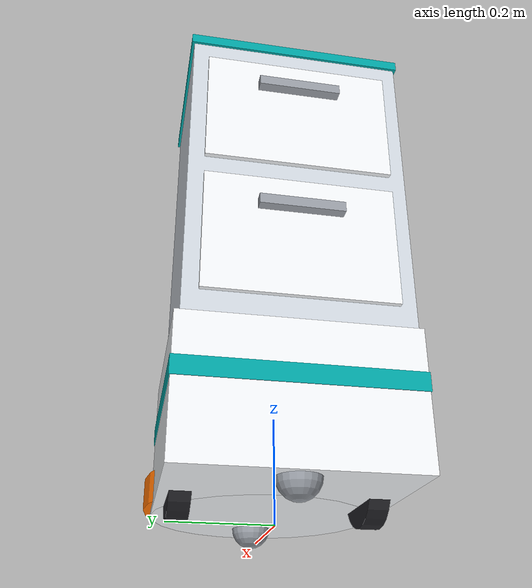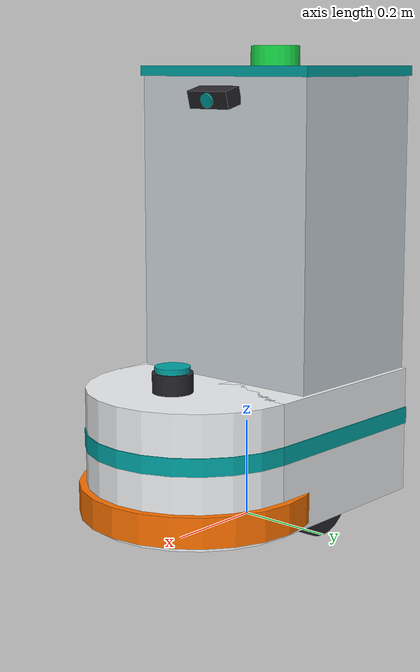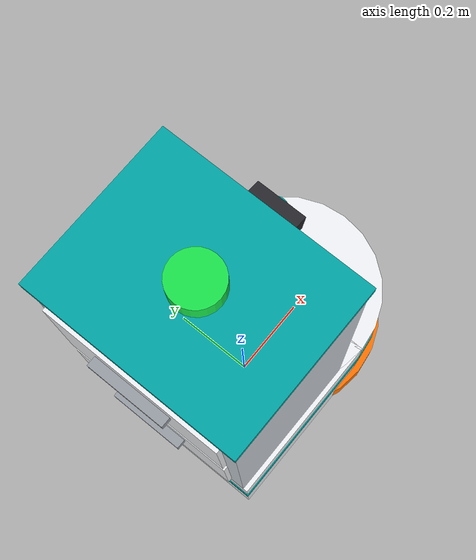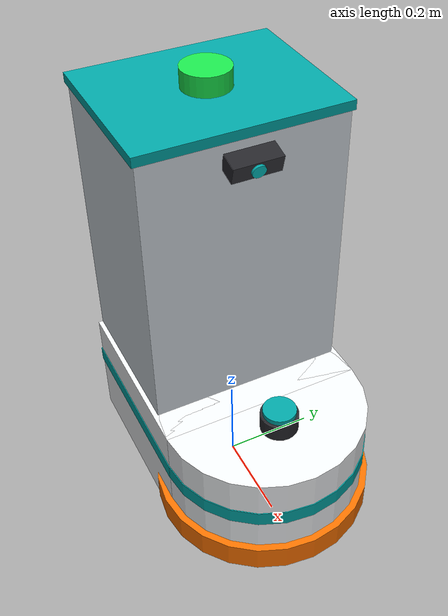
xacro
<?xml version="1.0"?>
<robot name="lokman" xmlns:xacro="http://www.ros.org/wiki/xacro">

  <xacro:include filename="$(find lokman_description)/urdf/ortak.xacro"/>
  <xacro:include filename="$(find lokman_description)/urdf/chassis.xacro"/>
  <xacro:include filename="$(find lokman_description)/urdf/surus.gazebo.xacro"/>

  <!-- ===== Sensörler ===== -->
  <xacro:include filename="$(find lokman_description)/urdf/lidar.xacro"/>
  <xacro:include filename="$(find lokman_description)/urdf/camera.xacro"/>
  <xacro:include filename="$(find lokman_description)/urdf/imu.xacro"/>
  <xacro:include filename="$(find lokman_description)/urdf/bumper.xacro"/>

</robot>

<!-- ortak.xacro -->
<robot xmlns:xacro="http://www.ros.org/wiki/xacro">

  <xacro:property name="renkler" value="${dict(
      hastane_beyazi = '0.95 0.96 0.97 1',
      turkuaz        = '0.0 0.65 0.65 1',
      kabin_grisi    = '0.82 0.85 0.88 1',
      koyu_gri       = '0.15 0.15 0.17 1',
      metal          = '0.6 0.62 0.65 1',
      durum_yesili   = '0.1 0.9 0.3 1',
      bumper_turuncu = '1.0 0.45 0.0 1')}"/>

  <xacro:macro name="renk" params="ad">
    <material name="${ad}"><color rgba="${renkler[ad]}"/></material>
  </xacro:macro>

  <!-- ===== Eylemsizlik makroları ===== -->
  <xacro:macro name="kutu_inertia" params="m x y z">
    <inertial>
      <mass value="${m}"/>
      <inertia ixx="${m*(y*y+z*z)/12}" ixy="0" ixz="0"
               iyy="${m*(x*x+z*z)/12}" iyz="0"
               izz="${m*(x*x+y*y)/12}"/>
    </inertial>
  </xacro:macro>

  <!-- Silindir: eksen z yönünde, r yarıçap, h yükseklik -->
  <xacro:macro name="silindir_inertia" params="m r h *origin">
    <inertial>
      <xacro:insert_block name="origin"/>
      <mass value="${m}"/>
      <inertia ixx="${m*(3*r*r+h*h)/12}" ixy="0" ixz="0"
               iyy="${m*(3*r*r+h*h)/12}" iyz="0"
               izz="${m*r*r/2}"/>
    </inertial>
  </xacro:macro>

  <xacro:macro name="kure_inertia" params="m r">
    <inertial>
      <mass value="${m}"/>
      <inertia ixx="${2*m*r*r/5}" ixy="0" ixz="0"
               iyy="${2*m*r*r/5}" iyz="0"
               izz="${2*m*r*r/5}"/>
    </inertial>
  </xacro:macro>

</robot>

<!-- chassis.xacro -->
<robot xmlns:xacro="http://www.ros.org/wiki/xacro">

  <!-- ===== Ölçüler (gerekçeler: docs/tasarim.md, bölüm 3) ===== -->
  <xacro:property name="teker_r"        value="0.08"/>  <!-- tekerlek yarıçapı -->
  <xacro:property name="teker_w"        value="0.04"/>  <!-- tekerlek genişliği -->
  <xacro:property name="teker_aralik"   value="0.36"/>  <!-- iki teker merkezi arası -->
  <xacro:property name="govde_w"        value="0.44"/>  <!-- gövde genişliği -->
  <xacro:property name="kasa_l"         value="0.40"/>  <!-- dikdörtgen kasa uzunluğu -->
  <xacro:property name="kasa_arka_x"    value="-0.25"/> <!-- kasanın arka yüzü -->
  <xacro:property name="sasi_alt_z"     value="-0.04"/> <!-- yerden 0.04 m açıklık -->
  <xacro:property name="sasi_h"         value="0.26"/>  <!-- şasi yüksekliği -->
  <xacro:property name="caster_r"       value="0.04"/>
  <xacro:property name="kabin_l"        value="0.33"/>
  <xacro:property name="kabin_w"        value="0.42"/>
  <xacro:property name="kabin_h"        value="0.60"/>

  <!-- Türetilen değerler -->
  <xacro:property name="burun_r"   value="${govde_w/2}"/>
  <xacro:property name="burun_x"   value="${kasa_arka_x + kasa_l}"/>      <!-- 0.15: burun merkezi -->
  <xacro:property name="sasi_z"    value="${sasi_alt_z + sasi_h/2}"/>     <!-- şasi merkez yüksekliği -->
  <xacro:property name="sasi_ust"  value="${sasi_alt_z + sasi_h}"/>
  <xacro:property name="kabin_x"   value="${kasa_arka_x + kabin_l/2}"/>

  <!-- ===== base_footprint → base_link ===== -->
  <link name="base_footprint"/>

  <joint name="base_joint" type="fixed">
    <parent link="base_footprint"/>
    <child link="base_link"/>
    <origin xyz="0 0 ${teker_r}" rpy="0 0 0"/>
  </joint>

  <link name="base_link">
    <!-- Ana kasa -->
    <visual>
      <origin xyz="${kasa_arka_x + kasa_l/2} 0 ${sasi_z}"/>
      <geometry><box size="${kasa_l} ${govde_w} ${sasi_h}"/></geometry>
      <xacro:renk ad="hastane_beyazi"/>
    </visual>
    <collision>
      <origin xyz="${kasa_arka_x + kasa_l/2} 0 ${sasi_z}"/>
      <geometry><box size="${kasa_l} ${govde_w} ${sasi_h}"/></geometry>
    </collision>

    <!-- Yarım daire burun -->
    <visual>
      <origin xyz="${burun_x} 0 ${sasi_z}"/>
      <geometry><cylinder radius="${burun_r}" length="${sasi_h}"/></geometry>
      <xacro:renk ad="hastane_beyazi"/>
    </visual>
    <collision>
      <origin xyz="${burun_x} 0 ${sasi_z}"/>
      <geometry><cylinder radius="${burun_r}" length="${sasi_h}"/></geometry>
    </collision>

    <!-- Turkuaz şerit: gövdeyi çevreleyen ince bant (sadece görsel) -->
    <visual>
      <origin xyz="${kasa_arka_x + kasa_l/2} 0 0.12"/>
      <geometry><box size="${kasa_l + 0.004} ${govde_w + 0.004} 0.035"/></geometry>
      <xacro:renk ad="turkuaz"/>
    </visual>
    <visual>
      <origin xyz="${burun_x} 0 0.12"/>
      <geometry><cylinder radius="${burun_r + 0.002}" length="0.035"/></geometry>
      <xacro:renk ad="turkuaz"/>
    </visual>

    <!-- Kütle: bataryalar tabanda → 18 kg, ağırlık merkezi alçakta -->
    <xacro:kutu_inertia m="18.0" x="${kasa_l + burun_r}" y="${govde_w}" z="${sasi_h}"/>
  </link>

  <!-- ===== Çekmeceli kabin ===== -->
  <link name="kabin_link">
    <visual>
      <geometry><box size="${kabin_l} ${kabin_w} ${kabin_h}"/></geometry>
      <xacro:renk ad="kabin_grisi"/>
    </visual>
    <collision>
      <geometry><box size="${kabin_l} ${kabin_w} ${kabin_h}"/></geometry>
    </collision>

    <!-- Arka yüzde iki çekmece kapağı + kulplar.
         Çekmeceler ARKADA: hemşire robotun arkasından yükler,
         ön taraf sensörlere (kamera, LiDAR) ayrılmıştır. -->
    <visual>
      <origin xyz="${-kabin_l/2 - 0.005} 0 0.14"/>
      <geometry><box size="0.01 ${kabin_w - 0.06} 0.24"/></geometry>
      <xacro:renk ad="hastane_beyazi"/>
    </visual>
    <visual>
      <origin xyz="${-kabin_l/2 - 0.005} 0 -0.14"/>
      <geometry><box size="0.01 ${kabin_w - 0.06} 0.24"/></geometry>
      <xacro:renk ad="hastane_beyazi"/>
    </visual>
    <visual>
      <origin xyz="${-kabin_l/2 - 0.02} 0 0.20"/>
      <geometry><box size="0.02 0.16 0.02"/></geometry>
      <xacro:renk ad="metal"/>
    </visual>
    <visual>
      <origin xyz="${-kabin_l/2 - 0.02} 0 -0.08"/>
      <geometry><box size="0.02 0.16 0.02"/></geometry>
      <xacro:renk ad="metal"/>
    </visual>

    <!-- Üstte turkuaz kapak ve yeşil durum feneri -->
    <visual>
      <origin xyz="0 0 ${kabin_h/2 + 0.01}"/>
      <geometry><box size="${kabin_l + 0.01} ${kabin_w + 0.01} 0.02"/></geometry>
      <xacro:renk ad="turkuaz"/>
    </visual>
    <visual>
      <origin xyz="0 0 ${kabin_h/2 + 0.04}"/>
      <geometry><cylinder radius="0.05" length="0.04"/></geometry>
      <xacro:renk ad="durum_yesili"/>
    </visual>

    <xacro:kutu_inertia m="6.0" x="${kabin_l}" y="${kabin_w}" z="${kabin_h}"/>
  </link>

  <joint name="kabin_joint" type="fixed">
    <parent link="base_link"/>
    <child link="kabin_link"/>
    <origin xyz="${kabin_x} 0 ${sasi_ust + kabin_h/2}"/>
  </joint>

  <xacro:macro name="tahrik_tekeri" params="ad y_isaret">
    <link name="${ad}_teker_link">
      <visual>
        <origin rpy="${pi/2} 0 0"/>
        <geometry><cylinder radius="${teker_r}" length="${teker_w}"/></geometry>
        <xacro:renk ad="koyu_gri"/>
      </visual>
      <!-- Jant göbeği: tekerleğin döndüğünü görebilmek için merkez dışı küçük bir işaret -->
      <visual>
        <origin xyz="0.035 ${y_isaret*teker_w/2} 0" rpy="${pi/2} 0 0"/>
        <geometry><cylinder radius="0.015" length="0.004"/></geometry>
        <xacro:renk ad="turkuaz"/>
      </visual>
      <collision>
        <origin rpy="${pi/2} 0 0"/>
        <geometry><cylinder radius="${teker_r}" length="${teker_w}"/></geometry>
      </collision>
      <xacro:silindir_inertia m="1.5" r="${teker_r}" h="${teker_w}">
        <origin rpy="${pi/2} 0 0"/>
      </xacro:silindir_inertia>
    </link>

    <!-- continuous: sınırsız dönebilen eklem (teker) -->
    <joint name="${ad}_teker_joint" type="continuous">
      <parent link="base_link"/>
      <child link="${ad}_teker_link"/>
      <origin xyz="0 ${y_isaret*teker_aralik/2} 0"/>
      <axis xyz="0 1 0"/>
    </joint>

    <!-- Lastik: yüksek sürtünme → patinaj yapmaz -->
    <gazebo reference="${ad}_teker_link">
      <mu1>1.2</mu1>
      <mu2>1.2</mu2>
    </gazebo>
  </xacro:macro>

  <xacro:tahrik_tekeri ad="sol" y_isaret="1"/>
  <xacro:tahrik_tekeri ad="sag" y_isaret="-1"/>

  <!-- ===== Sarhoş tekerler (caster) =====
       Simülasyonda caster'ı sürtünmesiz bir küre olarak modelliyoruz:
       her yöne serbestçe kayar, tıpkı dönebilen bir sarhoş teker gibi. -->
  <xacro:macro name="caster" params="ad x">
    <link name="${ad}_caster_link">
      <visual>
        <geometry><sphere radius="${caster_r}"/></geometry>
        <xacro:renk ad="metal"/>
      </visual>
      <collision>
        <geometry><sphere radius="${caster_r}"/></geometry>
      </collision>
      <xacro:kure_inertia m="0.5" r="${caster_r}"/>
    </link>

    <joint name="${ad}_caster_joint" type="fixed">
      <parent link="base_link"/>
      <child link="${ad}_caster_link"/>
      <!-- Küre zemine değsin: merkez yerden caster_r kadar yukarıda -->
      <origin xyz="${x} 0 ${caster_r - teker_r}"/>
    </joint>

    <gazebo reference="${ad}_caster_link">
      <mu1>0.0</mu1>
      <mu2>0.0</mu2>
    </gazebo>
  </xacro:macro>

  <xacro:caster ad="on"   x="0.26"/>
  <xacro:caster ad="arka" x="-0.20"/>

</robot>

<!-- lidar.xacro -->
<robot xmlns:xacro="http://www.ros.org/wiki/xacro">

  <xacro:property name="lidar_x" value="0.22"/>              <!-- burnun üstü -->
  <xacro:property name="lidar_z" value="${sasi_ust + 0.03}"/> <!-- base_link'e göre 0.25 → yerden 0.33 -->

  <link name="lidar_link">
    <!-- Gövde: koyu silindir + üstte turkuaz pencere halkası -->
    <visual>
      <origin xyz="0 0 -0.01"/>
      <geometry><cylinder radius="0.04" length="0.04"/></geometry>
      <xacro:renk ad="koyu_gri"/>
    </visual>
    <visual>
      <origin xyz="0 0 0.015"/>
      <geometry><cylinder radius="0.035" length="0.012"/></geometry>
      <xacro:renk ad="turkuaz"/>
    </visual>
    <collision>
      <geometry><cylinder radius="0.04" length="0.05"/></geometry>
    </collision>
    <xacro:silindir_inertia m="0.17" r="0.04" h="0.05">
      <origin xyz="0 0 0"/>
    </xacro:silindir_inertia>
  </link>

  <joint name="lidar_joint" type="fixed">
    <parent link="base_link"/>
    <child link="lidar_link"/>
    <origin xyz="${lidar_x} 0 ${lidar_z}"/>
  </joint>

  <!-- Gazebo sensör tanımı -->
  <gazebo reference="lidar_link">
    <sensor name="lidar" type="gpu_lidar">
      <topic>/scan</topic>
      <!-- Mesajın frame_id'si: RViz noktaları doğru yere çizsin -->
      <gz_frame_id>lidar_link</gz_frame_id>
      <update_rate>10</update_rate>          <!-- 10 Hz: saniyede 10 tarama -->
      <always_on>true</always_on>
      <visualize>true</visualize>
      <lidar>
        <scan>
          <horizontal>
            <samples>240</samples>           <!-- 240 ışın → 1° çözünürlük -->
            <resolution>1</resolution>
            <min_angle>-2.0944</min_angle>
            <max_angle>2.0944</max_angle>
          </horizontal>
          <vertical>
            <samples>1</samples>             <!-- 2D: tek tarama düzlemi -->
          </vertical>
        </scan>
        <range>
          <min>0.12</min>                    <!-- 12 cm'den yakını ölçemez -->
          <max>8.0</max>                     <!-- 8 m menzil: koridor için yeterli -->
          <resolution>0.01</resolution>
        </range>
        <!-- Gerçek sensörler gibi küçük bir ölçüm gürültüsü (±1 cm) -->
        <noise>
          <type>gaussian</type>
          <mean>0.0</mean>
          <stddev>0.01</stddev>
        </noise>
      </lidar>
    </sensor>
  </gazebo>

</robot>

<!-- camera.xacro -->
<robot xmlns:xacro="http://www.ros.org/wiki/xacro">

  <!-- Kabinin ön yüzü base_link'e göre x = 0.08, üst yüzü z = 0.82 -->
  <xacro:property name="kamera_x"    value="${kasa_arka_x + kabin_l + 0.02}"/>
  <xacro:property name="kamera_z"    value="${sasi_ust + kabin_h - 0.04}"/>
  <xacro:property name="kamera_egim" value="0.26"/>  <!-- 15° aşağı (radyan) -->

  <link name="kamera_link">
    <!-- Gövde: koyu kutu + turkuaz çerçeveli lens -->
    <visual>
      <geometry><box size="0.04 0.10 0.035"/></geometry>
      <xacro:renk ad="koyu_gri"/>
    </visual>
    <visual>
      <origin xyz="0.022 0 0" rpy="0 ${pi/2} 0"/>
      <geometry><cylinder radius="0.014" length="0.006"/></geometry>
      <xacro:renk ad="turkuaz"/>
    </visual>
    <collision>
      <geometry><box size="0.04 0.10 0.035"/></geometry>
    </collision>
    <xacro:kutu_inertia m="0.08" x="0.04" y="0.10" z="0.035"/>
  </link>

  <joint name="kamera_joint" type="fixed">
    <parent link="base_link"/>
    <child link="kamera_link"/>
    <origin xyz="${kamera_x} 0 ${kamera_z}" rpy="0 ${kamera_egim} 0"/>
  </joint>

  <link name="kamera_optik_link"/>
  <joint name="kamera_optik_joint" type="fixed">
    <parent link="kamera_link"/>
    <child link="kamera_optik_link"/>
    <origin xyz="0 0 0" rpy="${-pi/2} 0 ${-pi/2}"/>
  </joint>

  <!-- Gazebo sensör tanımı -->
  <gazebo reference="kamera_link">
    <sensor name="kamera" type="camera">
      <topic>/kamera/image_raw</topic>
      <gz_frame_id>kamera_optik_link</gz_frame_id>
      <update_rate>15</update_rate>
      <always_on>true</always_on>
      <visualize>true</visualize>
      <camera>
        <camera_info_topic>/kamera/camera_info</camera_info_topic>
        <horizontal_fov>1.2</horizontal_fov>
        <image>
          <width>640</width>
          <height>480</height>
          <format>R8G8B8</format>
        </image>
        <clip>
          <near>0.05</near>   <!-- 5 cm'den yakını çizme -->
          <far>20.0</far>     <!-- 20 m'den uzağı çizme -->
        </clip>
        <!-- Gerçek kameralardaki gibi hafif görüntü gürültüsü -->
        <noise>
          <type>gaussian</type>
          <mean>0.0</mean>
          <stddev>0.005</stddev>
        </noise>
      </camera>
    </sensor>
  </gazebo>

</robot>

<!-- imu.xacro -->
<robot xmlns:xacro="http://www.ros.org/wiki/xacro">

  <xacro:property name="imu_z" value="0.05"/>  <!-- tahrik aksının (dönme merkezinin) üstü -->

  <link name="imu_link">
    <!-- Küçük bir devre kartı: 3 × 3 × 1 cm -->
    <visual>
      <geometry><box size="0.03 0.03 0.01"/></geometry>
      <xacro:renk ad="koyu_gri"/>
    </visual>
    <collision>
      <geometry><box size="0.03 0.03 0.01"/></geometry>
    </collision>
    <xacro:kutu_inertia m="0.01" x="0.03" y="0.03" z="0.01"/>
  </link>

  <joint name="imu_joint" type="fixed">
    <parent link="base_link"/>
    <child link="imu_link"/>
    <origin xyz="0 0 ${imu_z}"/>
  </joint>

  <!-- Gürültü makrosu: aynı ayarı 3 eksene tekrar tekrar yazmamak için -->
  <xacro:macro name="imu_gurultu" params="stddev">
    <noise type="gaussian">
      <mean>0.0</mean>
      <stddev>${stddev}</stddev>
    </noise>
  </xacro:macro>

  <!-- Gazebo sensör tanımı (dünyadaki gz-sim-imu-system bunu çalıştırır) -->
  <gazebo reference="imu_link">
    <sensor name="imu" type="imu">
      <topic>/imu</topic>
      <gz_frame_id>imu_link</gz_frame_id>
      <update_rate>100</update_rate>   <!-- 100 Hz: saniyede 100 ölçüm -->
      <always_on>true</always_on>
      <visualize>false</visualize>
      <imu>
        <!-- Jiroskop gürültüsü: ±0.002 rad/s -->
        <angular_velocity>
          <x><xacro:imu_gurultu stddev="0.002"/></x>
          <y><xacro:imu_gurultu stddev="0.002"/></y>
          <z><xacro:imu_gurultu stddev="0.002"/></z>
        </angular_velocity>
        <!-- İvmeölçer gürültüsü: ±0.02 m/s² -->
        <linear_acceleration>
          <x><xacro:imu_gurultu stddev="0.02"/></x>
          <y><xacro:imu_gurultu stddev="0.02"/></y>
          <z><xacro:imu_gurultu stddev="0.02"/></z>
        </linear_acceleration>
      </imu>
    </sensor>
  </gazebo>

</robot>

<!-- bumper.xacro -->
<robot xmlns:xacro="http://www.ros.org/wiki/xacro">

  <link name="bumper_link">
    <visual>
      <geometry>
        <cylinder radius="0.235" length="0.06"/>
      </geometry>
      <xacro:renk ad="bumper_turuncu"/>
    </visual>
    <collision>
      <geometry>
        <cylinder radius="0.235" length="0.06"/>
      </geometry>
    </collision>
    <xacro:silindir_inertia m="0.2" r="0.235" h="0.06">
      <origin xyz="0 0 0"/>
    </xacro:silindir_inertia>
  </link>

  <joint name="bumper_joint" type="fixed">
    <parent link="base_link"/>
    <child link="bumper_link"/>
    <origin xyz="${burun_x} 0 0.0"/>
  </joint>

  <!-- TUZAK 1 ÇÖZÜMÜ: Link'in ana gövdeyle birleşmesini engeller -->
  <gazebo reference="bumper_joint">
    <preserveFixedJoint>true</preserveFixedJoint>
  </gazebo>

  <gazebo reference="bumper_link">
    <sensor name="bumper" type="contact">
      <update_rate>30</update_rate>
      <always_on>true</always_on>
      <contact>
        <collision>bumper_link_collision</collision>
        <topic>/bumper</topic>
      </contact>
    </sensor>
  </gazebo>
</robot>
